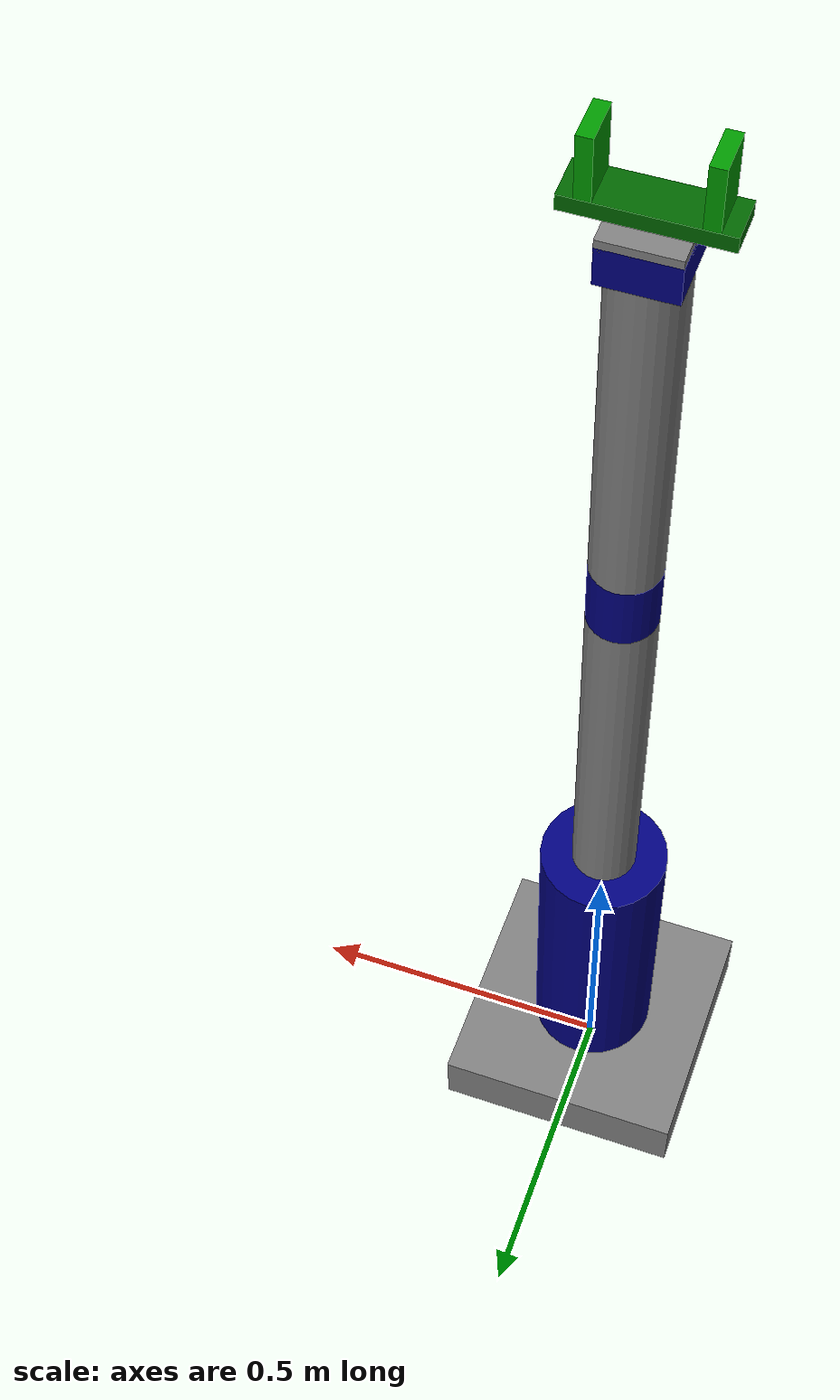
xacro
<?xml version="1.0"?>
<robot name="my_robot" xmlns:xacro="http://www.ros.org/wiki/xacro">

    <xacro:include filename="common_properties.xacro"/>
    <xacro:include filename="arm.xacro"/>
    <xacro:include filename="gripper.xacro"/>
    <xacro:include filename="my_robot.ros2_control.xacro"/>

    <joint name="gripper_base_link" type="fixed">
    <parent link="tool_link"/>
    <child link="gripper_base_link"/>
    <origin xyz="0.0 0.0 0.0" rpy="0.0 0.0 0.0"/>

    </joint>
</robot>

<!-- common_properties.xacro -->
<robot  xmlns:xacro="http://www.ros.org/wiki/xacro">
    <material name="greg">

        <color rgba="0.5 0.5 0.5 1"/>

    </material>

    <material name="blue">
        <color rgba="0.0 0.0 0.5 1"/>
    </material>

    <material name="dark_green">
        <color rgba="0.0 0.4 0.0 1.0"/>
    </material>

    <material name="light_green">
        <color rgba="0.0 0.6 0.0 1.0"/>
    </material>

</robot>

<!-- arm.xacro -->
<robot  xmlns:xacro="http://www.ros.org/wiki/xacro">

  <link name="base_link">
      <visual>
          <geometry>
              <box size="0.4 0.4 0.1"/>
          </geometry>
          <origin xyz="0.0 0.0 0.05" rpy="0.0 0.0 0.0"/>
          <material name="greg"/>
      </visual>
      <collision>
        <geometry>
             <box size="0.4 0.4 0.1"/>
        </geometry>
        <origin xyz="0.0 0.0 0.05" rpy="0.0 0.0 0.0"/>
      </collision>
  </link>

  <link name="shoulder_link">
      <visual>
          <geometry>
              <cylinder radius="0.1" length="0.5"/>
          </geometry>
          <origin xyz="0.0 0.0 0.25" rpy="0.0 0.0 0.0"/>
          <material name="blue" />
      </visual>
      <collision>
      <geometry>
              <box size="0.2 0.2 0.5"/>
          </geometry>
          <origin xyz="0.0 0.0 0.25" rpy="0.0 0.0 0.0"/>

      </collision>
  </link>

  <link name="arm_link">
      <visual>
          <geometry>
              <cylinder radius="0.05" length="0.6"/>
          </geometry>
          <origin xyz="0.0 0.0 0.3" rpy="0.0 0.0 0.0"/>
          <material name="greg" />
      </visual>
            <collision>
      <geometry>
              <box size="0.1 0.1 0.6"/>
          </geometry>
          <origin xyz="0.0 0.0 0.3" rpy="0.0 0.0 0.0"/>

      </collision>
  </link>

  <link name="elbow_link">
      <visual>
          <geometry>
              <cylinder radius="0.05" length="0.1"/>
          </geometry>
          <origin xyz="0.0 0.0 0.05" rpy="0.0 0.0 0.0"/>
          <material name="blue" />
      </visual>
            <collision>
      <geometry>
              <box size="0.1 0.1 0.1"/>
          </geometry>
          <origin xyz="0.0 0.0 0.05" rpy="0.0 0.0 0.0"/>

      </collision>
  </link>

  <link name="forearm_link">
      <visual>
          <geometry>
              <cylinder radius="0.05" length="0.5"/>
          </geometry>
          <origin xyz="0.0 0.0 0.25" rpy="0.0 0.0 0.0"/>
          <material name="greg" />
      </visual>
            <collision>
      <geometry>
              <box size="0.1 0.1 0.5"/>
          </geometry>
          <origin xyz="0.0 0.0 0.25" rpy="0.0 0.0 0.0"/>

      </collision>
  </link>

  <link name="wrist_link">
      <visual>
          <geometry>
              <box size="0.1 0.1 0.05"/>
          </geometry>
          <origin xyz="0.0 0.0 0.025" rpy="0.0 0.0 0.0"/>
          <material name="blue" />
      </visual>
            <collision>
      <geometry>
              <box size="0.1 0.1 0.05"/>
          </geometry>
          <origin xyz="0.0 0.0 0.025" rpy="0.0 0.0 0.0"/>

      </collision>
  </link>

  <link name="hand_link">
      <visual>
          <geometry>
              <box size="0.1 0.1 0.02"/>
          </geometry>
          <origin xyz="0.0 0.0 0.001" rpy="0.0 0.0 0.0"/>
          <material name="greg" />
      </visual>
            <collision>
      <geometry>
              <box size="0.1 0.1 0.02"/>
          </geometry>
          <origin xyz="0.0 0.0 0.001" rpy="0.0 0.0 0.0"/>

      </collision>
  </link>

  <link name="tool_link"/>

  <joint name="joint1" type="revolute">
      <parent link="base_link"/>
      <child link="shoulder_link"/>
      <origin xyz="0.0 0.0 0.1" rpy="0.0 0.0 0.0"/>
      <axis xyz="0 0 1"/>
      <limit lower="-3.14" upper="3.14" effort="1000" velocity="1.0"/>
  </joint>

  <joint name="joint_2" type="revolute">
      <parent link="shoulder_link"/>
      <child link="arm_link"/>
      <origin xyz="0.0 0.0 0.5" rpy="0.0 0.0 0.0"/>
      <axis xyz="0 1 0"/>
      <limit lower="0" upper="2.5" effort="1000" velocity="1.0"/>
  </joint>

  <joint name="joint_3" type="revolute">
      <parent link="arm_link"/>
      <child link="elbow_link"/>
      <origin xyz="0.0 0.0 0.6" rpy="0.0 0.0 0.0"/>
      <axis xyz="0 1 0"/>
      <limit lower="0" upper="2.5" effort="1000" velocity="1.0"/>
  </joint>

  <joint name="joint_4" type="revolute">
      <parent link="elbow_link"/>
      <child link="forearm_link"/>
      <origin xyz="0.0 0.0 0.1" rpy="0.0 0.0 0.0"/>
      <axis xyz="0 0 1"/>
      <limit lower="-3.14" upper="3.14" effort="1000" velocity="1.0"/>
  </joint>

  <joint name="joint_5" type="revolute">
      <parent link="forearm_link"/>
      <child link="wrist_link"/>
      <origin xyz="0.0 0.0 0.5" rpy="0.0 0.0 0.0"/>
      <axis xyz="0 1 0"/>
      <limit lower="-1.57" upper="1.57" effort="1000" velocity="1.0"/>
  </joint>

  <joint name="joint_6" type="continuous">
      <parent link="wrist_link"/>
      <child link="hand_link"/>
      <origin xyz="0.0 0.0 0.05" rpy="0.0 0.0 0.0"/>
      <axis xyz="0 0 1"/>
  </joint>

  <joint name="hand_tool_joint" type="fixed">
      <parent link="hand_link"/>
      <child link="tool_link"/>
      <origin xyz="0.0 0.0 0.02" rpy="0.0 0.0 0.0"/>
  </joint>

</robot>

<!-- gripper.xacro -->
<robot   xmlns:xacro="http://www.ros.org/wiki/xacro">

<link name="gripper_base_link">
    <visual>
        <geometry>
            <box size="0.2 0.06 0.02"/>
        </geometry>
            <origin xyz="0.0 0.0 0.01" rpy="0.0 0.0 0.0"/>
            <material name="dark_green"/>
    </visual>
    <collision>
        <geometry>
            <box size="0.02 0.06 0.0"/>
        </geometry>
            <origin xyz="0.0 0.0 0.01" rpy="0.0 0.0 0.0"/>
    </collision>

</link>

<link name="gripper_left_finger_link">

    <visual>
        <geometry>
            <box size="0.02 0.06 0.08"/>
        </geometry>
            <origin xyz="0.0 0.0 0.04" rpy="0.0 0.0 0.0"/>
            <material name="light_green"/>
    </visual>
    <collision>
        <geometry>
            <box size="0.02 0.06 0.08"/>
        </geometry>
            <origin xyz="0.0 0.0 0.04" rpy="0.0 0.0 0.0"/>
    </collision>

</link>

<link name="gripper_right_finger_link">

    <visual>
        <geometry>
            <box size="0.02 0.06 0.08"/>
        </geometry>
            <origin xyz="0.0 0.0 0.04" rpy="0.0 0.0 0.0"/>
            <material name="light_green"/>
    </visual>
    <collision>
        <geometry>
            <box size="0.02 0.06 0.08"/>
        </geometry>
            <origin xyz="0.0 0.0 0.04" rpy="0.0 0.0 0.0"/>
    </collision>

</link>

<joint name="gripper_left_finger_joint" type="prismatic">
    <parent link="gripper_base_link"/>
    <child link="gripper_left_finger_link"/>
    <origin xyz="-0.07 0.0 0.02" rpy="0.0 0.0 0.0"/>
    <axis xyz="1.0 0.0 0.0"/>
    <limit lower="0.0" upper="0.06" effort="1000" velocity="1.0"/>
</joint>

<joint name="gripper_right_finger_joint" type="prismatic">
    <parent link="gripper_base_link"/>
    <child link="gripper_right_finger_link"/>
    <origin xyz="0.07 0.0 0.02" rpy="0.0 0.0 0.0"/>
    <axis xyz="1.0 0.0 0.0"/>
    <mimic joint="gripper_left_finger_joint" multiplier="-1.0"/>
    <limit lower="-0.06" upper="0.0" effort="1000" velocity="1.0"/>
</joint>

</robot>
